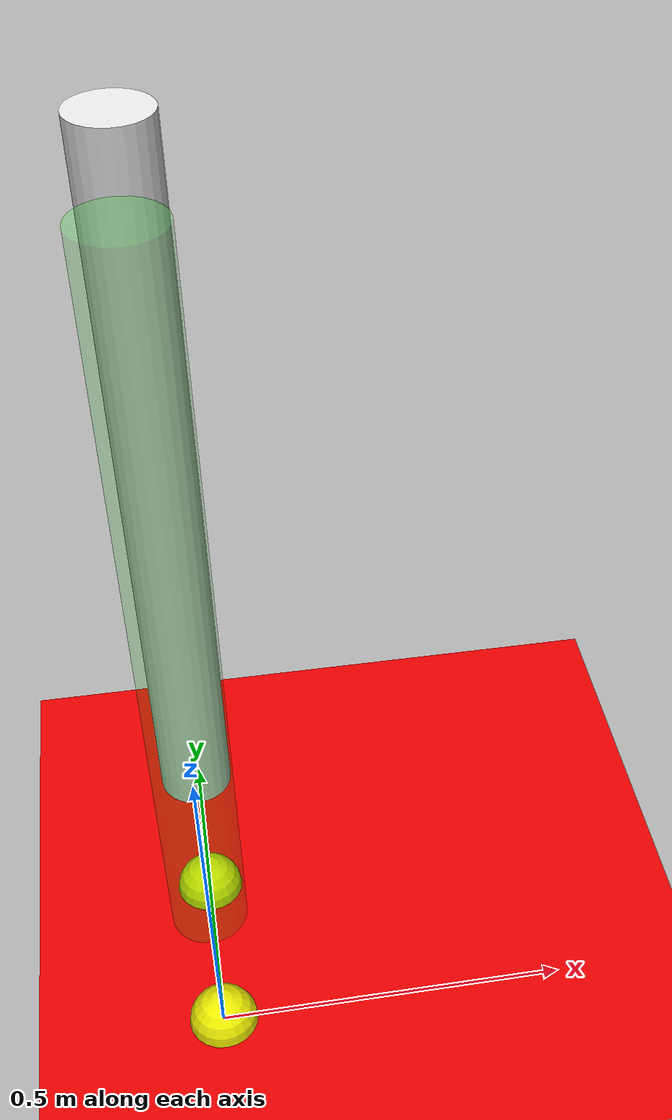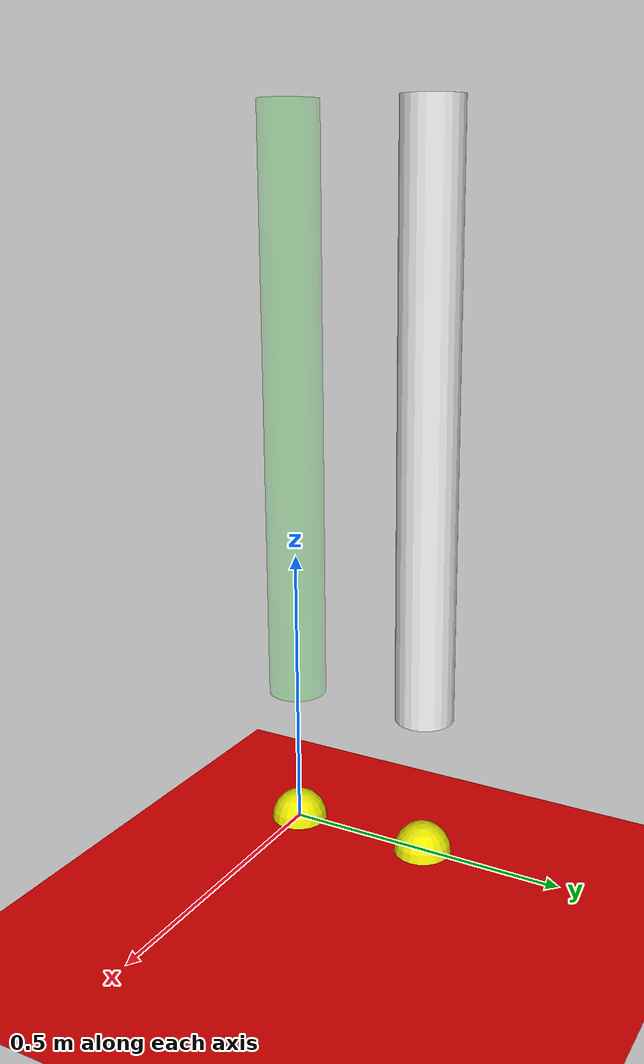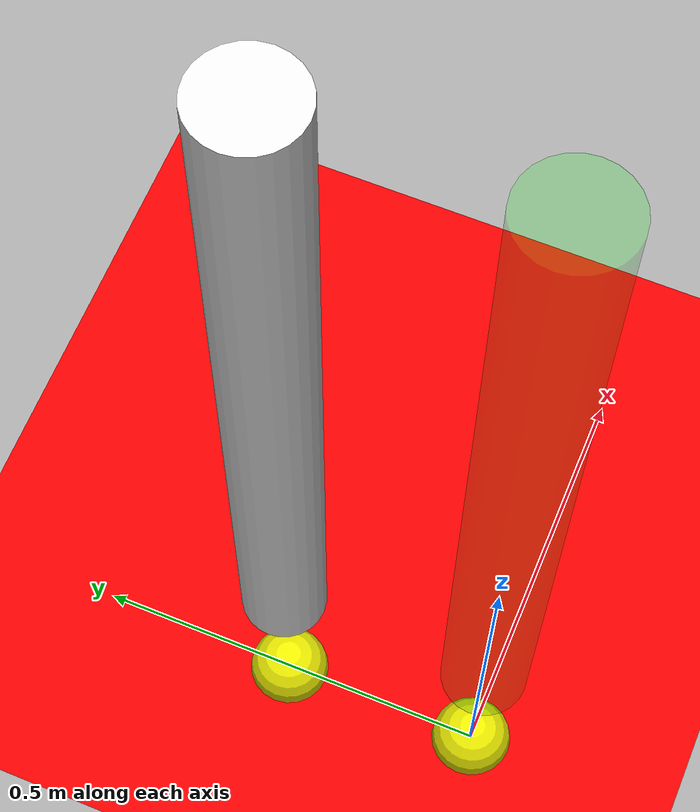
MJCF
<mujoco>

<visual>
  <headlight ambient = "0.25 0.25 0.25"/>
</visual>
  <option timestep="0.001" integrator="RK4" gravity="0 0 -9.81">
    <flag contact="enable" energy="enable"/>

  </option>
  <worldbody>
    <geom type="plane" size="1000 5 0.1" rgba=".9 0 0 1"/>
    <body name="leg1" pos="0 0 0.75" euler="0 0 0">
    <!-- Unactuated degrees of freedom -->
    <!-- Leg 1 is setup connected to the world -->
    <!-- joints x, y, and pin define movement in the world. These joints are not actuated -->
      <joint name="x" type="slide" pos="0 0 0.5" axis="1 0 0"/>
      <joint name="y" type="slide" pos="0 0 0.5" axis="0 0 1"/>
      <joint name = "pin" type="hinge" pos="0 0 0.5" axis="0 -1 0"/>
      <geom type="cylinder" size="0.05 .5" rgba="0 .9 0 .2" mass="1"/>
      <body name="foot1" pos="0 0 -.75">
        <joint name="knee1" type="slide" pos="0 0 0.25" axis="0 0 -1"/>
        <geom type="sphere" size=".05" rgba="0.9 .9 0 1" mass=".1"/>
      </body>
      <body name="leg2" pos="0 .25 0" euler="0 0 0">
        <joint name="hip" type="hinge" pos="0 0 0.5" axis="0 -1 0"/>
        <geom type="cylinder" size="0.05 .5" rgba="0.9 .9 0.9 1" mass="1"/>
        <body name="foot2" pos="0 0 -.75">
        <joint name="knee2" type="slide" pos="0 0 0.25" axis="0 0 -1"/>
        <geom type="sphere" size=".05" rgba="0.9 .9 0 1" mass=".1"/>
      </body>

      </body>

    </body>
  </worldbody>

  <actuator>
    <position name="pservo_hip" joint="hip" kp="5"/>
    <velocity name="vservo_hip" joint="hip" kv="1"/>
    <position name="pservo_knee1" joint="knee1" kp="1000"/>
    <velocity name="vservo_knee1" joint="knee1" kv="100"/>
    <position name="pservo_knee2" joint="knee2" kp="1000"/>
    <velocity name="vservo_knee2" joint="knee2" kv="100"/>
  </actuator>
</mujoco>
